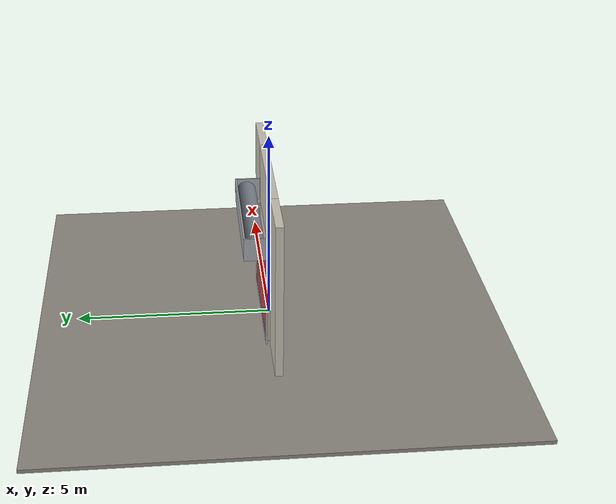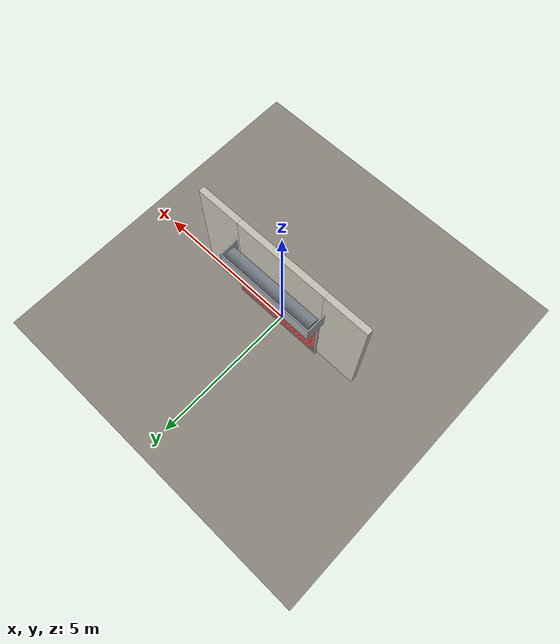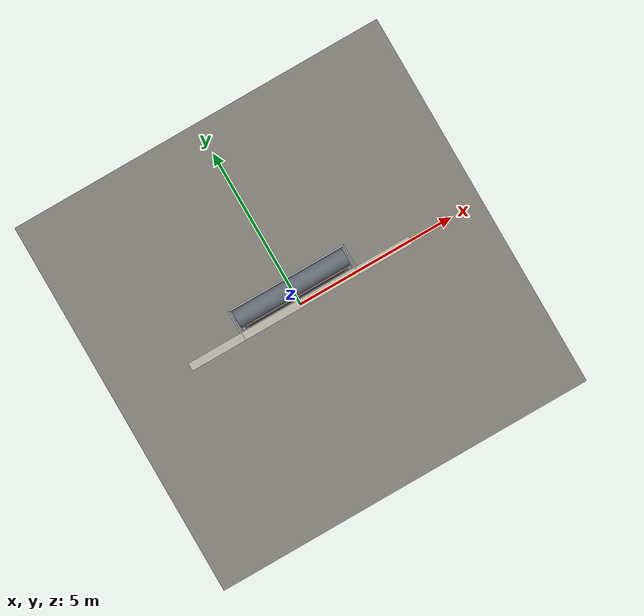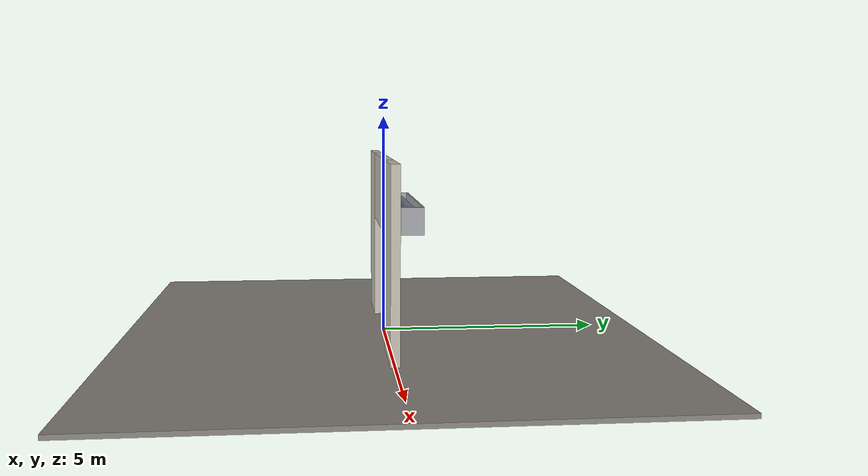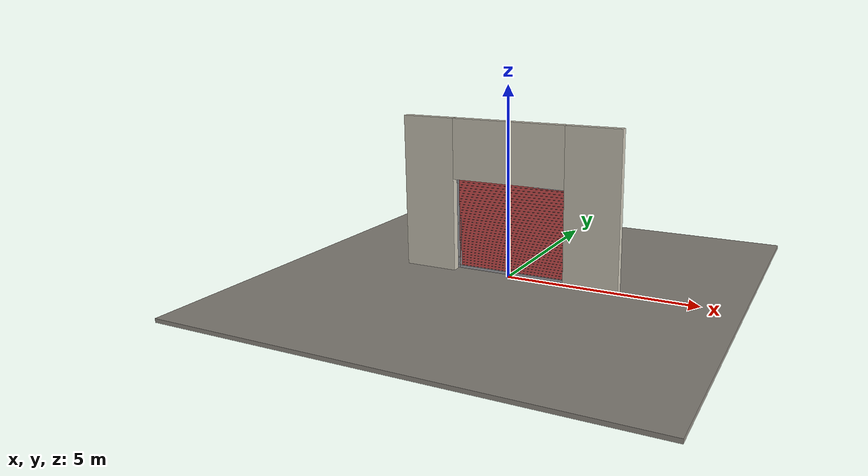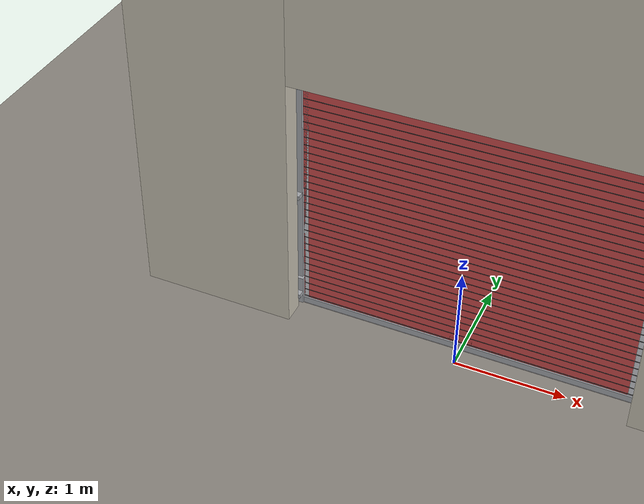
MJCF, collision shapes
<?xml version="1.0" ?>
<mujoco model="db0435_rollup_full">
  <compiler angle="radian" meshdir="../../hardware" texturedir="../../textures" autolimits="true" inertiafromgeom="false"/>
  <option timestep="0.002" integrator="implicitfast" cone="elliptic" impratio="10" noslip_iterations="3">
    <flag multiccd="enable"/>
  </option>
  <size memory="16M"/>
  <default>
    <geom condim="4" solref="0.005 1" solimp="0.95 0.99 0.001"/>
    <joint solreflimit="0.005 1" solimplimit="0.95 0.99 0.001"/>
    <tendon solreflimit="0.005 1"/>
    <equality solref="0.002 1"/>
  </default>
  <visual>
    <headlight ambient="0.4 0.4 0.4" diffuse="0.7 0.7 0.7" specular="0.2 0.2 0.2"/>
    <quality shadowsize="4096"/>
    <map znear="0.01" zfar="60"/>
  </visual>
  <asset>
    <mesh name="pull_bdc5e965ab" file="pull_bdc5e965ab.obj"/>
    <material name="mat_floor" rgba="0.55 0.53 0.5 1" specular="0.2" shininess="0.15" reflectance="0"/>
    <material name="mat_wall" rgba="0.78 0.76 0.7 1" specular="0.2" shininess="0.1" reflectance="0"/>
    <material name="mat_frame" rgba="0.45 0.48 0.52 1" specular="0.32" shininess="0.6" reflectance="0.08"/>
    <material name="mat_track" rgba="0.65 0.66 0.68 1" specular="0.74" shininess="0.5" reflectance="0.36"/>
    <material name="mat_curtain" rgba="0.8 0.81 0.83 1" specular="0.8" shininess="0.6" reflectance="0.4"/>
    <material name="mat_slat_line" rgba="0.25 0.25 0.25 1" specular="0.2" shininess="0.3" reflectance="0"/>
    <material name="mat_astragal" rgba="0.09 0.09 0.1 1" specular="0.2" shininess="0.1" reflectance="0"/>
    <material name="mat_op_black_matte_metal" rgba="0.05 0.05 0.05 1" specular="0.38" shininess="0.3" reflectance="0.12"/>
    <material name="mat_slidelock" rgba="0.65 0.66 0.68 1" specular="0.74" shininess="0.5" reflectance="0.36"/>
    <texture name="skybox" type="skybox" builtin="gradient" rgb1="0.6 0.7 0.85" rgb2="0.9 0.92 0.95" width="256" height="256"/>
  </asset>
  <worldbody>
    <light name="sun" pos="1.5 -2.5 4" dir="-0.3 0.5 -0.8" directional="true" diffuse="0.8 0.8 0.8" specular="0.3 0.3 0.3" castshadow="true"/>
    <light name="fill" pos="-1.5 2.5 3" dir="0.3 -0.5 -0.7" directional="true" diffuse="0.35 0.35 0.4" castshadow="false"/>
    <camera name="robot_view" pos="0 -3.53125 2.23375" xyaxes="1 0 0 0 0.26963 0.962964" fovy="52"/>
    <camera name="far_view" pos="0 3.53125 2.23375" xyaxes="-1 0 0 0 -0.26963 0.962964" fovy="52"/>
    <camera name="iso" pos="2.68375 -2.96625 2.79875" xyaxes="0.741536 0.670913 0 -0.242917 0.268487 0.932151" fovy="46"/>
    <camera name="detail_handle" pos="0.25 -0.97 0.51" xyaxes="0.975133 0.221621 0 -0.065674 0.288965 0.955084" fovy="38"/>
    <geom name="floor" type="box" size="6 6 0.05" pos="0 0 -0.05" material="mat_floor" group="0" contype="1" conaffinity="1" friction="0.8 0.005 0.0001" density="2400"/>
    <geom name="wall_left" type="box" size="0.725 0.1 2.045" pos="-2.275 0 2.045" material="mat_wall" group="0" contype="1" conaffinity="1" friction="0.6 0.005 0.0001" density="800"/>
    <geom name="wall_right" type="box" size="0.725 0.1 2.045" pos="2.275 0 2.045" material="mat_wall" group="0" contype="1" conaffinity="1" friction="0.6 0.005 0.0001" density="800"/>
    <geom name="wall_header" type="box" size="1.55 0.1 0.8" pos="0 0 3.29" material="mat_wall" group="0" contype="1" conaffinity="1" friction="0.6 0.005 0.0001" density="800"/>
    <geom name="guide_l" type="box" size="0.03 0.025 0.1425" pos="-1.56 0.185 0.1425" material="mat_track" group="0" contype="1" conaffinity="1" friction="0.6 0.005 0.0001" density="7850"/>
    <geom name="guide_l_upper" type="box" size="0.03 0.025 1.0875" pos="-1.56 0.185 1.4025" material="mat_track" group="0" contype="1" conaffinity="1" friction="0.6 0.005 0.0001" density="7850"/>
    <geom name="guide_r" type="box" size="0.03 0.025 1.245" pos="1.56 0.185 1.245" material="mat_track" group="0" contype="1" conaffinity="1" friction="0.6 0.005 0.0001" density="7850"/>
    <geom name="guide_bracket_l_0" type="box" size="0.028 0.034 0.02" pos="-1.56 0.13 0.12" material="mat_track" group="1" contype="0" conaffinity="0" density="7850"/>
    <geom name="guide_bracket_l_1" type="box" size="0.028 0.034 0.02" pos="-1.56 0.13 1.245" material="mat_track" group="1" contype="0" conaffinity="0" density="7850"/>
    <geom name="guide_bracket_l_2" type="box" size="0.028 0.034 0.02" pos="-1.56 0.13 2.37" material="mat_track" group="1" contype="0" conaffinity="0" density="7850"/>
    <geom name="guide_bracket_r_0" type="box" size="0.028 0.034 0.02" pos="1.56 0.13 0.12" material="mat_track" group="1" contype="0" conaffinity="0" density="7850"/>
    <geom name="guide_bracket_r_1" type="box" size="0.028 0.034 0.02" pos="1.56 0.13 1.245" material="mat_track" group="1" contype="0" conaffinity="0" density="7850"/>
    <geom name="guide_bracket_r_2" type="box" size="0.028 0.034 0.02" pos="1.56 0.13 2.37" material="mat_track" group="1" contype="0" conaffinity="0" density="7850"/>
    <geom name="coil_drum" type="cylinder" size="0.25 1.575" pos="0 0.463 2.79" quat="0.707107 0 0.707107 0" material="mat_frame" group="1" contype="0" conaffinity="0" density="300"/>
    <geom name="coil_shaft" type="cylinder" size="0.022 1.655" pos="0 0.463 2.79" quat="0.707107 0 0.707107 0" material="mat_track" group="1" contype="0" conaffinity="0" density="7850"/>
    <geom name="hood_front" type="box" size="1.645 0.02 0.3" pos="0 0.725 2.79" material="mat_track" group="1" contype="0" conaffinity="0" density="7850"/>
    <geom name="hood_end_l" type="box" size="0.02 0.3225 0.3" pos="-1.645 0.4225 2.79" material="mat_track" group="1" contype="0" conaffinity="0" density="7850"/>
    <geom name="hood_end_r" type="box" size="0.02 0.3225 0.3" pos="1.645 0.4225 2.79" material="mat_track" group="1" contype="0" conaffinity="0" density="7850"/>
    <site name="approach_point" pos="0 -2 0" quat="1 0 0 0" size="0.05" rgba="0.2 0.9 0.2 0.5" group="4"/>
    <site name="goal_point" pos="0 2 0" quat="1 0 0 0" size="0.05" rgba="0.2 0.9 0.2 0.5" group="4"/>
    <site name="door_plane_center" pos="0 0 1.245" quat="1 0 0 0" size="0.02" rgba="0.2 0.9 0.2 0.5" group="4"/>
    <body name="curtain" pos="0 0 0">
      <inertial pos="-0.002133 0.184775 1.094693" mass="85.863604" quat="0.706971 -0.707229 -0.003115 -0.003136" diaginertia="49.925014308 66.388339907 116.307610928"/>
      <joint name="curtain_slide" type="slide" axis="0 0 1" limited="true" range="0 2.39" damping="6.300545" frictionloss="67.478303" stiffness="95.32095" springref="7.966667" armature="0.5"/>
      <geom name="curtain_slab_col" type="box" size="1.525 0.005 1.22" pos="0 0.185 1.23" material="mat_curtain" group="3" contype="1" conaffinity="1" rgba="0.8 0.3 0.3 0.25" friction="0.35 0.005 0.0001" density="1"/>
      <geom name="curtain_rail_b" type="box" size="1.525 0.005 0.0225" pos="0 0.185 0.0325" material="mat_curtain" group="1" contype="0" conaffinity="0" density="1"/>
      <geom name="curtain_rail_t" type="box" size="1.525 0.005 0.0225" pos="0 0.185 2.4275" material="mat_curtain" group="1" contype="0" conaffinity="0" density="1"/>
      <geom name="curtain_stile_h" type="box" size="0.0225 0.005 1.22" pos="-1.5025 0.185 1.23" material="mat_curtain" group="1" contype="0" conaffinity="0" density="1"/>
      <geom name="curtain_stile_l" type="box" size="0.0225 0.005 1.22" pos="1.5025 0.185 1.23" material="mat_curtain" group="1" contype="0" conaffinity="0" density="1"/>
      <geom name="curtain_grille_0" type="cylinder" size="0.006 1.48" pos="0 0.185 0.08625" quat="0.707107 0 0.707107 0" material="mat_curtain" group="1" contype="0" conaffinity="0" density="1"/>
      <geom name="curtain_grille_1" type="cylinder" size="0.006 1.48" pos="0 0.185 0.23875" quat="0.707107 0 0.707107 0" material="mat_curtain" group="1" contype="0" conaffinity="0" density="1"/>
      <geom name="curtain_grille_2" type="cylinder" size="0.006 1.48" pos="0 0.185 0.39125" quat="0.707107 0 0.707107 0" material="mat_curtain" group="1" contype="0" conaffinity="0" density="1"/>
      <geom name="curtain_grille_3" type="cylinder" size="0.006 1.48" pos="0 0.185 0.54375" quat="0.707107 0 0.707107 0" material="mat_curtain" group="1" contype="0" conaffinity="0" density="1"/>
      <geom name="curtain_grille_4" type="cylinder" size="0.006 1.48" pos="0 0.185 0.69625" quat="0.707107 0 0.707107 0" material="mat_curtain" group="1" contype="0" conaffinity="0" density="1"/>
      <geom name="curtain_grille_5" type="cylinder" size="0.006 1.48" pos="0 0.185 0.84875" quat="0.707107 0 0.707107 0" material="mat_curtain" group="1" contype="0" conaffinity="0" density="1"/>
      <geom name="curtain_grille_6" type="cylinder" size="0.006 1.48" pos="0 0.185 1.00125" quat="0.707107 0 0.707107 0" material="mat_curtain" group="1" contype="0" conaffinity="0" density="1"/>
      <geom name="curtain_grille_7" type="cylinder" size="0.006 1.48" pos="0 0.185 1.15375" quat="0.707107 0 0.707107 0" material="mat_curtain" group="1" contype="0" conaffinity="0" density="1"/>
      <geom name="curtain_grille_8" type="cylinder" size="0.006 1.48" pos="0 0.185 1.30625" quat="0.707107 0 0.707107 0" material="mat_curtain" group="1" contype="0" conaffinity="0" density="1"/>
      <geom name="curtain_grille_9" type="cylinder" size="0.006 1.48" pos="0 0.185 1.45875" quat="0.707107 0 0.707107 0" material="mat_curtain" group="1" contype="0" conaffinity="0" density="1"/>
      <geom name="curtain_grille_10" type="cylinder" size="0.006 1.48" pos="0 0.185 1.61125" quat="0.707107 0 0.707107 0" material="mat_curtain" group="1" contype="0" conaffinity="0" density="1"/>
      <geom name="curtain_grille_11" type="cylinder" size="0.006 1.48" pos="0 0.185 1.76375" quat="0.707107 0 0.707107 0" material="mat_curtain" group="1" contype="0" conaffinity="0" density="1"/>
      <geom name="curtain_grille_12" type="cylinder" size="0.006 1.48" pos="0 0.185 1.91625" quat="0.707107 0 0.707107 0" material="mat_curtain" group="1" contype="0" conaffinity="0" density="1"/>
      <geom name="curtain_grille_13" type="cylinder" size="0.006 1.48" pos="0 0.185 2.06875" quat="0.707107 0 0.707107 0" material="mat_curtain" group="1" contype="0" conaffinity="0" density="1"/>
      <geom name="curtain_grille_14" type="cylinder" size="0.006 1.48" pos="0 0.185 2.22125" quat="0.707107 0 0.707107 0" material="mat_curtain" group="1" contype="0" conaffinity="0" density="1"/>
      <geom name="curtain_grille_15" type="cylinder" size="0.006 1.48" pos="0 0.185 2.37375" quat="0.707107 0 0.707107 0" material="mat_curtain" group="1" contype="0" conaffinity="0" density="1"/>
      <geom name="slat_line_1" type="box" size="1.525 0.001 0.003" pos="0 0.179 0.08625" material="mat_slat_line" group="1" contype="0" conaffinity="0" density="1"/>
      <geom name="slat_line_2" type="box" size="1.525 0.001 0.003" pos="0 0.179 0.1625" material="mat_slat_line" group="1" contype="0" conaffinity="0" density="1"/>
      <geom name="slat_line_3" type="box" size="1.525 0.001 0.003" pos="0 0.179 0.23875" material="mat_slat_line" group="1" contype="0" conaffinity="0" density="1"/>
      <geom name="slat_line_4" type="box" size="1.525 0.001 0.003" pos="0 0.179 0.315" material="mat_slat_line" group="1" contype="0" conaffinity="0" density="1"/>
      <geom name="slat_line_5" type="box" size="1.525 0.001 0.003" pos="0 0.179 0.39125" material="mat_slat_line" group="1" contype="0" conaffinity="0" density="1"/>
      <geom name="slat_line_6" type="box" size="1.525 0.001 0.003" pos="0 0.179 0.4675" material="mat_slat_line" group="1" contype="0" conaffinity="0" density="1"/>
      <geom name="slat_line_7" type="box" size="1.525 0.001 0.003" pos="0 0.179 0.54375" material="mat_slat_line" group="1" contype="0" conaffinity="0" density="1"/>
      <geom name="slat_line_8" type="box" size="1.525 0.001 0.003" pos="0 0.179 0.62" material="mat_slat_line" group="1" contype="0" conaffinity="0" density="1"/>
      <geom name="slat_line_9" type="box" size="1.525 0.001 0.003" pos="0 0.179 0.69625" material="mat_slat_line" group="1" contype="0" conaffinity="0" density="1"/>
      <geom name="slat_line_10" type="box" size="1.525 0.001 0.003" pos="0 0.179 0.7725" material="mat_slat_line" group="1" contype="0" conaffinity="0" density="1"/>
      <geom name="slat_line_11" type="box" size="1.525 0.001 0.003" pos="0 0.179 0.84875" material="mat_slat_line" group="1" contype="0" conaffinity="0" density="1"/>
      <geom name="slat_line_12" type="box" size="1.525 0.001 0.003" pos="0 0.179 0.925" material="mat_slat_line" group="1" contype="0" conaffinity="0" density="1"/>
      <geom name="slat_line_13" type="box" size="1.525 0.001 0.003" pos="0 0.179 1.00125" material="mat_slat_line" group="1" contype="0" conaffinity="0" density="1"/>
      <geom name="slat_line_14" type="box" size="1.525 0.001 0.003" pos="0 0.179 1.0775" material="mat_slat_line" group="1" contype="0" conaffinity="0" density="1"/>
      <geom name="slat_line_15" type="box" size="1.525 0.001 0.003" pos="0 0.179 1.15375" material="mat_slat_line" group="1" contype="0" conaffinity="0" density="1"/>
      <geom name="slat_line_16" type="box" size="1.525 0.001 0.003" pos="0 0.179 1.23" material="mat_slat_line" group="1" contype="0" conaffinity="0" density="1"/>
      <geom name="slat_line_17" type="box" size="1.525 0.001 0.003" pos="0 0.179 1.30625" material="mat_slat_line" group="1" contype="0" conaffinity="0" density="1"/>
      <geom name="slat_line_18" type="box" size="1.525 0.001 0.003" pos="0 0.179 1.3825" material="mat_slat_line" group="1" contype="0" conaffinity="0" density="1"/>
      <geom name="slat_line_19" type="box" size="1.525 0.001 0.003" pos="0 0.179 1.45875" material="mat_slat_line" group="1" contype="0" conaffinity="0" density="1"/>
      <geom name="slat_line_20" type="box" size="1.525 0.001 0.003" pos="0 0.179 1.535" material="mat_slat_line" group="1" contype="0" conaffinity="0" density="1"/>
      <geom name="slat_line_21" type="box" size="1.525 0.001 0.003" pos="0 0.179 1.61125" material="mat_slat_line" group="1" contype="0" conaffinity="0" density="1"/>
      <geom name="slat_line_22" type="box" size="1.525 0.001 0.003" pos="0 0.179 1.6875" material="mat_slat_line" group="1" contype="0" conaffinity="0" density="1"/>
      <geom name="slat_line_23" type="box" size="1.525 0.001 0.003" pos="0 0.179 1.76375" material="mat_slat_line" group="1" contype="0" conaffinity="0" density="1"/>
      <geom name="slat_line_24" type="box" size="1.525 0.001 0.003" pos="0 0.179 1.84" material="mat_slat_line" group="1" contype="0" conaffinity="0" density="1"/>
      <geom name="slat_line_25" type="box" size="1.525 0.001 0.003" pos="0 0.179 1.91625" material="mat_slat_line" group="1" contype="0" conaffinity="0" density="1"/>
      <geom name="slat_line_26" type="box" size="1.525 0.001 0.003" pos="0 0.179 1.9925" material="mat_slat_line" group="1" contype="0" conaffinity="0" density="1"/>
      <geom name="slat_line_27" type="box" size="1.525 0.001 0.003" pos="0 0.179 2.06875" material="mat_slat_line" group="1" contype="0" conaffinity="0" density="1"/>
      <geom name="slat_line_28" type="box" size="1.525 0.001 0.003" pos="0 0.179 2.145" material="mat_slat_line" group="1" contype="0" conaffinity="0" density="1"/>
      <geom name="slat_line_29" type="box" size="1.525 0.001 0.003" pos="0 0.179 2.22125" material="mat_slat_line" group="1" contype="0" conaffinity="0" density="1"/>
      <geom name="slat_line_30" type="box" size="1.525 0.001 0.003" pos="0 0.179 2.2975" material="mat_slat_line" group="1" contype="0" conaffinity="0" density="1"/>
      <geom name="slat_line_31" type="box" size="1.525 0.001 0.003" pos="0 0.179 2.37375" material="mat_slat_line" group="1" contype="0" conaffinity="0" density="1"/>
      <geom name="bottom_bar" type="box" size="1.525 0.02 0.03" pos="0 0.185 0.042" material="mat_track" group="0" contype="1" conaffinity="1" friction="0.6 0.005 0.0001" density="7850"/>
      <geom name="bottom_astragal" type="box" size="1.525 0.015 0.006" pos="0 0.185 0.006" material="mat_astragal" group="0" contype="1" conaffinity="1" friction="0.6 0.005 0.0001" density="1100"/>
      <geom name="lift_handle_n" type="mesh" mesh="pull_bdc5e965ab" pos="0 0.18 0.16" quat="0.707107 0.707107 0 0" material="mat_op_black_matte_metal" group="1" contype="0" conaffinity="0" density="3000"/>
      <geom name="lift_handle_col_n" type="box" size="0.1 0.006 0.015" pos="0 0.13 0.16" material="mat_op_black_matte_metal" group="3" contype="1" conaffinity="1" rgba="0.8 0.3 0.3 0.25" friction="0.6 0.005 0.0001" density="3000"/>
      <geom name="garage_slide_lock_plate" type="box" size="0.0745 0.019 0.001" pos="-1.4425 0.191 0.3" quat="0 0 0.707107 0.707107" material="mat_slidelock" group="1" contype="0" conaffinity="0" density="7800"/>
      <geom name="garage_slide_lock_guide_0_leg_n" type="box" size="0.006 0.002 0.0115" pos="-1.509 0.2015 0.289" quat="0 0 0.707107 0.707107" material="mat_slidelock" group="1" contype="0" conaffinity="0" density="7800"/>
      <geom name="garage_slide_lock_guide_0_leg_p" type="box" size="0.006 0.002 0.0115" pos="-1.509 0.2015 0.311" quat="0 0 0.707107 0.707107" material="mat_slidelock" group="1" contype="0" conaffinity="0" density="7800"/>
      <geom name="garage_slide_lock_guide_0_bridge" type="box" size="0.006 0.013 0.002" pos="-1.509 0.211 0.3" quat="0 0 0.707107 0.707107" material="mat_slidelock" group="1" contype="0" conaffinity="0" density="7800"/>
      <geom name="garage_slide_lock_guide_1_leg_n" type="box" size="0.006 0.002 0.0115" pos="-1.378 0.2015 0.289" quat="0 0 0.707107 0.707107" material="mat_slidelock" group="1" contype="0" conaffinity="0" density="7800"/>
      <geom name="garage_slide_lock_guide_1_leg_p" type="box" size="0.006 0.002 0.0115" pos="-1.378 0.2015 0.311" quat="0 0 0.707107 0.707107" material="mat_slidelock" group="1" contype="0" conaffinity="0" density="7800"/>
      <geom name="garage_slide_lock_guide_1_bridge" type="box" size="0.006 0.013 0.002" pos="-1.378 0.211 0.3" quat="0 0 0.707107 0.707107" material="mat_slidelock" group="1" contype="0" conaffinity="0" density="7800"/>
      <site name="lift_handle_grip_n" pos="0 0.13 0.16" quat="1 0 0 0" size="0.012" rgba="0.2 0.9 0.2 0.5" group="4"/>
      <body name="garage_slide_lock" pos="-1.525 0.2 0.3">
        <inertial pos="0.076803 0.003734 0" mass="0.147296" quat="0.999918 0 0 0.012811" diaginertia="0.000014058 0.000190091 0.000201622"/>
        <joint name="garage_slide_lock_slide" type="slide" axis="1 0 0" limited="true" range="0 0.05" damping="1" frictionloss="1" armature="0.1" ref="0.05"/>
        <geom name="garage_slide_lock_rod" type="capsule" size="0.006 0.064" pos="0.075 0 0" quat="0.707107 0 -0.707107 0" material="mat_slidelock" group="0" contype="1" conaffinity="1" friction="0.6 0.005 0.0001" density="7850"/>
        <geom name="garage_slide_lock_knob" type="capsule" size="0.005 0.01" pos="0.085 0.015 0" quat="0.707107 -0.707107 0 0" material="mat_slidelock" group="0" contype="1" conaffinity="1" friction="0.6 0.005 0.0001" density="7850"/>
        <geom name="garage_slide_lock_knob_end" type="sphere" size="0.00675" pos="0.085 0.03 0" material="mat_slidelock" group="1" contype="0" conaffinity="0" density="7850"/>
        <site name="slide_lock_grip" pos="0.085 0.034 0" quat="1 0 0 0" size="0.012" rgba="0.2 0.9 0.2 0.5" group="4"/>
      </body>
    </body>
  </worldbody>
  <sensor>
    <jointpos name="curtain_slide_pos" joint="curtain_slide"/>
    <jointvel name="curtain_slide_vel" joint="curtain_slide"/>
    <jointpos name="garage_slide_lock_slide_pos" joint="garage_slide_lock_slide"/>
    <jointvel name="garage_slide_lock_slide_vel" joint="garage_slide_lock_slide"/>
  </sensor>
</mujoco>
